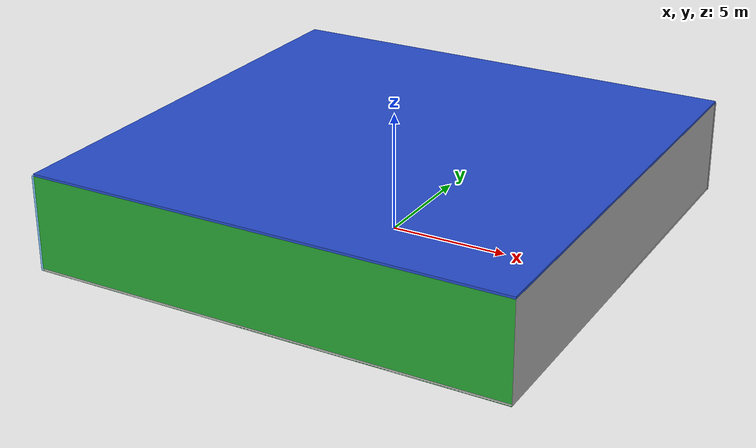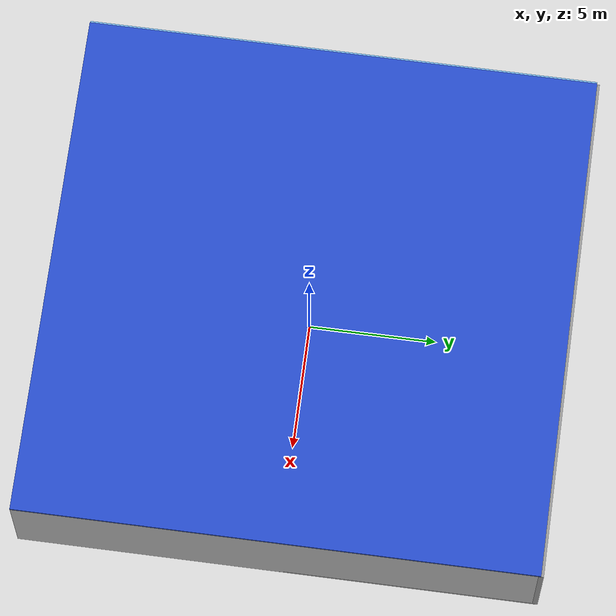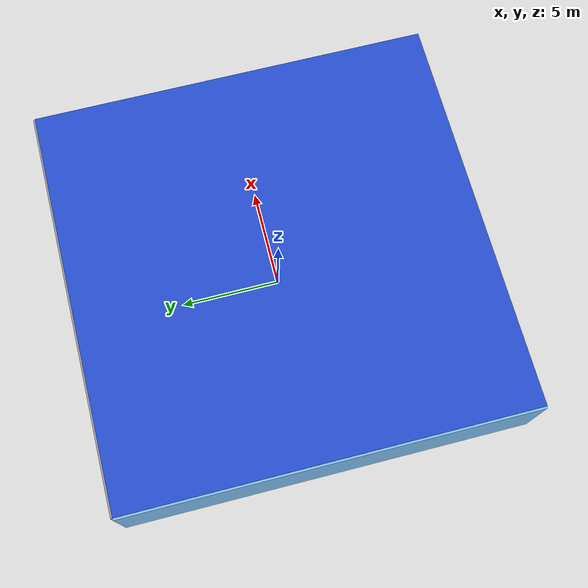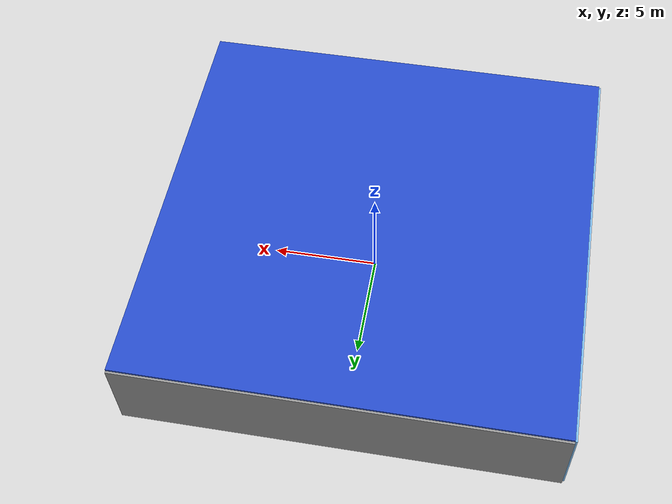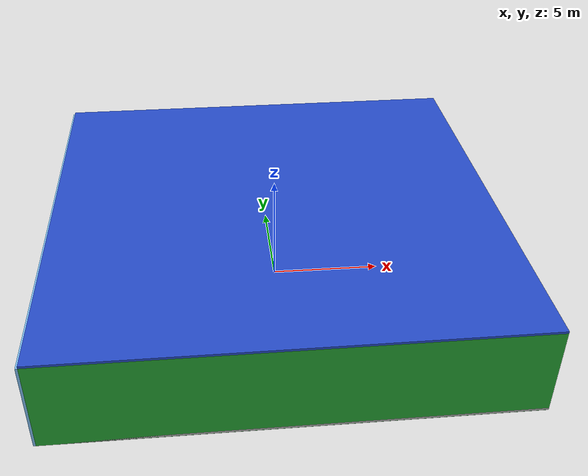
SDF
<sdf version="1.4">
 <world name="default">
  <physics type="ode">
   <max_step_size>0.001</max_step_size>
   <real_time_factor>1</real_time_factor>
   <real_time_update_rate>1000</real_time_update_rate>
   <gravity>0 0 -9.8</gravity>
  </physics>
  <scene><ambient>0.4 0.4 0.4 1</ambient><background>0.7 0.7 0.7 1</background><shadows>1</shadows></scene>
  <model name="Surrounding">
   <static>1</static>
   <link name="Ceiling">
    <collision name="Ceiling_Collision"><geometry><box><size>20 20 0.1</size></box></geometry></collision>
    <visual name="Ceiling_Visual">
     <geometry><box><size>20 20 0.1</size></box></geometry>
     <material>
      <script><uri>file://media/materials/scripts/gazebo.material</uri><name>Gazebo/BlueGlow</name></script>
     </material>
    </visual>
    <pose>0 0 4.05 0 0 0</pose>
   </link>
   <link name="Wall_South">
    <collision name="Wall_South_Collision">
     <geometry><box><size>20 0 4</size></box></geometry>
     <pose>0 0 2 0 -0 0</pose>
    </collision>
    <visual name="Wall_South_Visual">
     <pose>0 0 2 0 -0 0</pose>
     <geometry><box><size>20 0 4</size></box></geometry>
     <material>
      <script><uri>file://media/materials/scripts/gazebo.material</uri><name>Gazebo/Green</name></script>
     </material>
    </visual>
    <velocity_decay><linear>0</linear><angular>0</angular></velocity_decay>
    <pose>0 -10 0 0 -0 0</pose>
   </link>
   <link name="Wall_East">
    <collision name="Wall_21_Collision">
     <geometry><box><size>20 0 4</size></box></geometry>
     <pose>0 0 2 0 -0 0</pose>
    </collision>
    <visual name="Wall_21_Visual">
     <pose>0 0 2 0 -0 0</pose>
     <geometry><box><size>20 0 4</size></box></geometry>
     <material>
      <script><uri>file://media/materials/scripts/gazebo.material</uri><name>Gazebo/CloudySky</name></script>
     </material>
    </visual>
    <velocity_decay><linear>0</linear><angular>0</angular></velocity_decay>
    <pose>10 0 0 0 -0 1.5708</pose>
   </link>
   <link name="Wall_North">
    <collision name="Wall_22_Collision">
     <geometry><box><size>20 0.2 4</size></box></geometry>
     <pose>0 0 2 0 -0 0</pose>
    </collision>
    <visual name="Wall_22_Visual">
     <pose>0 0 2 0 -0 0</pose>
     <geometry><box><size>20 0.2 4</size></box></geometry>
     <material>
      <script><uri>file://media/materials/scripts/gazebo.material</uri><name>Gazebo/Grey</name></script>
     </material>
    </visual>
    <velocity_decay><linear>0</linear><angular>0</angular></velocity_decay>
    <pose>0 10 0 0 -0 0</pose>
   </link>
   <link name="Wall_West">
    <collision name="Wall_23_Collision">
     <geometry><box><size>20 0.2 4</size></box></geometry>
     <pose>0 0 2 0 -0 0</pose>
    </collision>
    <visual name="Wall_23_Visual">
     <pose>0 0 2 0 -0 0</pose>
     <geometry><box><size>20 0.2 4</size></box></geometry>
     <material>
      <script><uri>file://media/materials/scripts/gazebo.material</uri><name>Gazebo/SkyBlue</name></script>
     </material>
    </visual>
    <velocity_decay><linear>0</linear><angular>0</angular></velocity_decay>
    <pose>-10 0 0 0 0 -1.5708</pose>
   </link>
   <link name="Ground_link">
    <collision name="collision">
     <pose>0 0 .05 0 -0 0</pose>
     <geometry><box><size>20 20 0.1</size></box></geometry>
    </collision>
    <visual name="visual">
     <pose>0 0 .05 0 -0 0</pose>
     <geometry><box><size>20 20 0.1</size></box></geometry>
     <material>
      <script><uri>file://media/materials/scripts/gazebo.material</uri><name>Gazebo/LightOff</name></script>
     </material>
    </visual>
   </link>
   <static>1</static>
  </model>
  <spherical_coordinates>
   <surface_model>EARTH_WGS84</surface_model>
   <latitude_deg>0</latitude_deg>
   <longitude_deg>0</longitude_deg>
   <elevation>0</elevation>
   <heading_deg>0</heading_deg>
  </spherical_coordinates>
  <light name="lightball_0" type="diffuse">
   <diffuse>0.8 0.8 0.8 1</diffuse>
   <specular>0.2 0.2 0.2 1</specular>
   <attenuation>
    <range>100</range>
    <constant>0.7</constant>
    <linear>0.01</linear>
    <quadratic>0.001</quadratic>
   </attenuation>
   <direction>-0.5 0.1 -0.9</direction>
   <pose>-8.97615553926 7.69194780575 1.52173814184 0 0 0</pose>
  </light>
  <light name="lightball_1" type="diffuse">
   <diffuse>0.8 0.8 0.8 1</diffuse>
   <specular>0.2 0.2 0.2 1</specular>
   <attenuation>
    <range>100</range>
    <constant>0.7</constant>
    <linear>0.01</linear>
    <quadratic>0.001</quadratic>
   </attenuation>
   <direction>-0.5 0.1 -0.9</direction>
   <pose>-7.41958958718 8.16863283466 2.94779037143 0 0 0</pose>
  </light>
  <light name="lightball_2" type="diffuse">
   <diffuse>0.8 0.8 0.8 1</diffuse>
   <specular>0.2 0.2 0.2 1</specular>
   <attenuation>
    <range>100</range>
    <constant>0.7</constant>
    <linear>0.01</linear>
    <quadratic>0.001</quadratic>
   </attenuation>
   <direction>-0.5 0.1 -0.9</direction>
   <pose>-1.5793346428 -3.48572031275 2.51983009848 0 0 0</pose>
  </light>
  <light name="lightball_3" type="diffuse">
   <diffuse>0.8 0.8 0.8 1</diffuse>
   <specular>0.2 0.2 0.2 1</specular>
   <attenuation>
    <range>100</range>
    <constant>0.7</constant>
    <linear>0.01</linear>
    <quadratic>0.001</quadratic>
   </attenuation>
   <direction>-0.5 0.1 -0.9</direction>
   <pose>-4.67948471821 1.8083307408 3.32314997085 0 0 0</pose>
  </light>
  <light name="lightball_4" type="diffuse">
   <diffuse>0.8 0.8 0.8 1</diffuse>
   <specular>0.2 0.2 0.2 1</specular>
   <attenuation>
    <range>100</range>
    <constant>0.7</constant>
    <linear>0.01</linear>
    <quadratic>0.001</quadratic>
   </attenuation>
   <direction>-0.5 0.1 -0.9</direction>
   <pose>-3.59456597618 -1.75541211083 2.88697826608 0 0 0</pose>
  </light>
  <light name="lightball_5" type="diffuse">
   <diffuse>0.8 0.8 0.8 1</diffuse>
   <specular>0.2 0.2 0.2 1</specular>
   <attenuation>
    <range>100</range>
    <constant>0.7</constant>
    <linear>0.01</linear>
    <quadratic>0.001</quadratic>
   </attenuation>
   <direction>-0.5 0.1 -0.9</direction>
   <pose>-8.6607626925 4.52835691467 2.74146212703 0 0 0</pose>
  </light>
  <light name="lightball_6" type="diffuse">
   <diffuse>0.8 0.8 0.8 1</diffuse>
   <specular>0.2 0.2 0.2 1</specular>
   <attenuation>
    <range>100</range>
    <constant>0.7</constant>
    <linear>0.01</linear>
    <quadratic>0.001</quadratic>
   </attenuation>
   <direction>-0.5 0.1 -0.9</direction>
   <pose>-6.14442599485 -8.58142217087 3.70333484926 0 0 0</pose>
  </light>
  <light name="lightball_7" type="diffuse">
   <diffuse>0.8 0.8 0.8 1</diffuse>
   <specular>0.2 0.2 0.2 1</specular>
   <attenuation>
    <range>100</range>
    <constant>0.7</constant>
    <linear>0.01</linear>
    <quadratic>0.001</quadratic>
   </attenuation>
   <direction>-0.5 0.1 -0.9</direction>
   <pose>7.49913683418 -6.60500222775 2.218762763 0 0 0</pose>
  </light>
  <light name="lightball_8" type="diffuse">
   <diffuse>0.8 0.8 0.8 1</diffuse>
   <specular>0.2 0.2 0.2 1</specular>
   <attenuation>
    <range>100</range>
    <constant>0.7</constant>
    <linear>0.01</linear>
    <quadratic>0.001</quadratic>
   </attenuation>
   <direction>-0.5 0.1 -0.9</direction>
   <pose>-1.94180448312 3.71931219377 1.29381026519 0 0 0</pose>
  </light>
  <light name="lightball_9" type="diffuse">
   <diffuse>0.8 0.8 0.8 1</diffuse>
   <specular>0.2 0.2 0.2 1</specular>
   <attenuation>
    <range>100</range>
    <constant>0.7</constant>
    <linear>0.01</linear>
    <quadratic>0.001</quadratic>
   </attenuation>
   <direction>-0.5 0.1 -0.9</direction>
   <pose>-5.40165414829 -5.73309060514 1.13106776947 0 0 0</pose>
  </light>
  <light name="lightball_10" type="diffuse">
   <diffuse>0.8 0.8 0.8 1</diffuse>
   <specular>0.2 0.2 0.2 1</specular>
   <attenuation>
    <range>100</range>
    <constant>0.7</constant>
    <linear>0.01</linear>
    <quadratic>0.001</quadratic>
   </attenuation>
   <direction>-0.5 0.1 -0.9</direction>
   <pose>-3.22465064012 -0.901461089247 1.33083878826 0 0 0</pose>
  </light>
  <light name="lightball_11" type="diffuse">
   <diffuse>0.8 0.8 0.8 1</diffuse>
   <specular>0.2 0.2 0.2 1</specular>
   <attenuation>
    <range>100</range>
    <constant>0.7</constant>
    <linear>0.01</linear>
    <quadratic>0.001</quadratic>
   </attenuation>
   <direction>-0.5 0.1 -0.9</direction>
   <pose>9.060480644 1.86484442396 1.83071018839 0 0 0</pose>
  </light>
  <light name="lightball_12" type="diffuse">
   <diffuse>0.8 0.8 0.8 1</diffuse>
   <specular>0.2 0.2 0.2 1</specular>
   <attenuation>
    <range>100</range>
    <constant>0.7</constant>
    <linear>0.01</linear>
    <quadratic>0.001</quadratic>
   </attenuation>
   <direction>-0.5 0.1 -0.9</direction>
   <pose>5.53051706643 -6.55286083162 3.12745439231 0 0 0</pose>
  </light>
  <light name="lightball_13" type="diffuse">
   <diffuse>0.8 0.8 0.8 1</diffuse>
   <specular>0.2 0.2 0.2 1</specular>
   <attenuation>
    <range>100</range>
    <constant>0.7</constant>
    <linear>0.01</linear>
    <quadratic>0.001</quadratic>
   </attenuation>
   <direction>-0.5 0.1 -0.9</direction>
   <pose>-8.18380120113 7.30960152795 2.15245542308 0 0 0</pose>
  </light>
  <include>
   <uri>model://robocup_3Dsim_goal</uri>
   <pose>-4.73059098579 7.04749275872 0 0 0 2.83961311017</pose>
  </include>
 </world>
</sdf>

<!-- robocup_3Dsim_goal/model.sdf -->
<sdf version="1.5">
  <model name="robocup_3d_goal">
    <static>true</static>
    <link name="left_post">
      <pose>0 1.05 0.45 0 0 0</pose>
      <collision name="collision">
        <geometry>
          <cylinder>
            <radius>0.05</radius>
            <length>0.9</length>
          </cylinder>
        </geometry>
      </collision>
      <visual name="visual">
        <geometry>
          <cylinder>
            <radius>0.05</radius>
            <length>0.9</length>
          </cylinder>
        </geometry>
        <material>
          <script>
            <uri>file://media/materials/scripts/gazebo.material</uri>
            <name>Gazebo/ZincYellow</name>
          </script>
        </material>
      </visual>
    </link>
    <link name="left_support_horiz_lower">
      <pose>0.30 1.05 0.01 0 0 0</pose>
      <collision name="collision">
        <geometry>
          <box>
            <size>0.50 0.02 0.02</size>
          </box>
        </geometry>
      </collision>
      <visual name="visual">
        <geometry>
          <box>
            <size>0.50 0.02 0.02</size>
          </box>
        </geometry>
        <material>
          <script>
            <uri>file://media/materials/scripts/gazebo.material</uri>
            <name>Gazebo/White</name>
          </script>
        </material>
      </visual>
    </link>
    <link name="left_support_horiz_upper">
      <pose>0.30 1.05 0.79 0 0 0</pose>
      <collision name="collision">
        <geometry>
          <box>
            <size>0.50 0.02 0.02</size>
          </box>
        </geometry>
      </collision>
      <visual name="visual">
        <geometry>
          <box>
            <size>0.50 0.02 0.02</size>
          </box>
        </geometry>
        <material>
          <script>
            <uri>file://media/materials/scripts/gazebo.material</uri>
            <name>Gazebo/White</name>
          </script>
        </material>
      </visual>
    </link>
    <link name="left_support_vertical">
      <pose>0.56 1.05 0.4 0 1.5708 0</pose>
      <collision name="collision">
        <geometry>
          <box>
            <size>0.80 0.02 0.02</size>
          </box>
        </geometry>
      </collision>
      <visual name="visual">
        <geometry>
          <box>
            <size>0.80 0.02 0.02</size>
          </box>
        </geometry>
        <material>
          <script>
            <uri>file://media/materials/scripts/gazebo.material</uri>
            <name>Gazebo/White</name>
          </script>
        </material>
      </visual>
    </link>
    <link name="right_support_horiz_lower">
      <pose>0.30 -1.05 0.01 0 0 0</pose>
      <collision name="collision">
        <geometry>
          <box>
            <size>0.50 0.02 0.02</size>
          </box>
        </geometry>
      </collision>
      <visual name="visual">
        <geometry>
          <box>
            <size>0.50 0.02 0.02</size>
          </box>
        </geometry>
        <material>
          <script>
            <uri>file://media/materials/scripts/gazebo.material</uri>
            <name>Gazebo/White</name>
          </script>
        </material>
      </visual>
    </link>
    <link name="right_support_horiz_upper">
      <pose>0.30 -1.05 0.79 0 0 0</pose>
      <collision name="collision">
        <geometry>
          <box>
            <size>0.50 0.02 0.02</size>
          </box>
        </geometry>
      </collision>
      <visual name="visual">
        <geometry>
          <box>
            <size>0.50 0.02 0.02</size>
          </box>
        </geometry>
        <material>
          <script>
            <uri>file://media/materials/scripts/gazebo.material</uri>
            <name>Gazebo/White</name>
          </script>
        </material>
      </visual>
    </link>
    <link name="right_support_vertical">
      <pose>0.56 -1.05 0.4 0 1.5708 0</pose>
      <collision name="collision">
        <geometry>
          <box>
            <size>0.80 0.02 0.02</size>
          </box>
        </geometry>
      </collision>
      <visual name="visual">
        <geometry>
          <box>
            <size>0.80 0.02 0.02</size>
          </box>
        </geometry>
        <material>
          <script>
            <uri>file://media/materials/scripts/gazebo.material</uri>
            <name>Gazebo/White</name>
          </script>
        </material>
      </visual>
    </link>
    <link name="center_support_horiz_lower">
      <pose>0.56 0 0.01 0 1.5708 0</pose>
      <collision name="collision">
        <geometry>
          <box>
            <size>0.02 2.08 0.02</size>
          </box>
        </geometry>
      </collision>
      <visual name="visual">
        <geometry>
          <box>
            <size>0.02 2.08 0.02</size>
          </box>
        </geometry>
        <material>
          <script>
            <uri>file://media/materials/scripts/gazebo.material</uri>
            <name>Gazebo/White</name>
          </script>
        </material>
      </visual>
    </link>
    <link name="center_support_horiz_upper">
      <pose>0.56 0 0.79 0 1.5708 0</pose>
      <collision name="collision">
        <geometry>
          <box>
            <size>0.02 2.08 0.02</size>
          </box>
        </geometry>
      </collision>
      <visual name="visual">
        <geometry>
          <box>
            <size>0.02 2.08 0.02</size>
          </box>
        </geometry>
        <material>
          <script>
            <uri>file://media/materials/scripts/gazebo.material</uri>
            <name>Gazebo/White</name>
          </script>
        </material>
      </visual>
    </link>
    <link name="right_post">
      <pose>0 -1.05 0.45 0 0 0</pose>
      <collision name="collision">
        <geometry>
          <cylinder>
            <radius>0.05</radius>
            <length>0.9</length>
          </cylinder>
        </geometry>
      </collision>
      <visual name="visual">
        <geometry>
          <cylinder>
            <radius>0.05</radius>
            <length>0.9</length>
          </cylinder>
        </geometry>
        <material>
          <script>
            <uri>file://media/materials/scripts/gazebo.material</uri>
            <name>Gazebo/ZincYellow</name>
          </script>
        </material>
      </visual>
    </link>
    <link name="crossbar">
      <pose>0 0 0.85 1.57 1.57 0</pose>
      <collision name="collision">
        <geometry>
          <cylinder>
            <radius>0.05</radius>
            <length>2.0</length>
          </cylinder>
        </geometry>
      </collision>
      <visual name="visual">
        <geometry>
          <cylinder>
            <radius>0.05</radius>
            <length>2.0</length>
          </cylinder>
        </geometry>
        <material>
          <script>
            <uri>file://media/materials/scripts/gazebo.material</uri>
            <name>Gazebo/ZincYellow</name>
          </script>
        </material>
      </visual>
    </link>
    <link name="center_net">
      <pose>0.56 0 0.40 0 0 0</pose>
      <collision name="collision">
        <geometry>
          <box>
            <size>0.01 2.1 0.80</size>
          </box>
        </geometry>
      </collision>
      <visual name="visual">
        <geometry>
          <box>
            <size>0.01 2.1 0.80</size>
          </box>
        </geometry>
        <material>
          <script>
            <uri>model://../model_source/models/robocup09_spl_field/materials/scripts/</uri>
            <uri>model://../model_source/models/robocup09_spl_field/materials/textures/</uri>
            <name>RoboCup/Net</name>
          </script>
        </material>
      </visual>
    </link>
    <link name="left_net">
      <pose>0.30 1.05 0.40 0 0 0</pose>
      <collision name="collision">
        <geometry>
          <box>
            <size>0.50 0.01 0.76</size>
          </box>
        </geometry>
      </collision>
      <visual name="visual">
        <geometry>
          <box>
            <size>0.50 0.01 0.76</size>
          </box>
        </geometry>
        <material>
          <script>
            <uri>model://../model_source/models/robocup09_spl_field/materials/scripts/</uri>
            <uri>model://../model_source/models/robocup09_spl_field/materials/textures/</uri>
            <name>RoboCup/Net</name>
          </script>
        </material>
      </visual>
    </link>
    <link name="right_net">
      <pose>0.30 -1.05 0.40 0 0 0</pose>
      <collision name="collision">
        <geometry>
          <box>
            <size>0.50 0.01 0.76</size>
          </box>
        </geometry>
      </collision>
      <visual name="visual">
        <geometry>
          <box>
            <size>0.50 0.01 0.76</size>
          </box>
        </geometry>
        <material>
          <script>
            <uri>model://../model_source/models/robocup09_spl_field/materials/scripts/</uri>
            <uri>model://../model_source/models/robocup09_spl_field/materials/textures/</uri>
            <name>RoboCup/Net</name>
          </script>
        </material>
      </visual>
    </link>
  </model>
</sdf>
